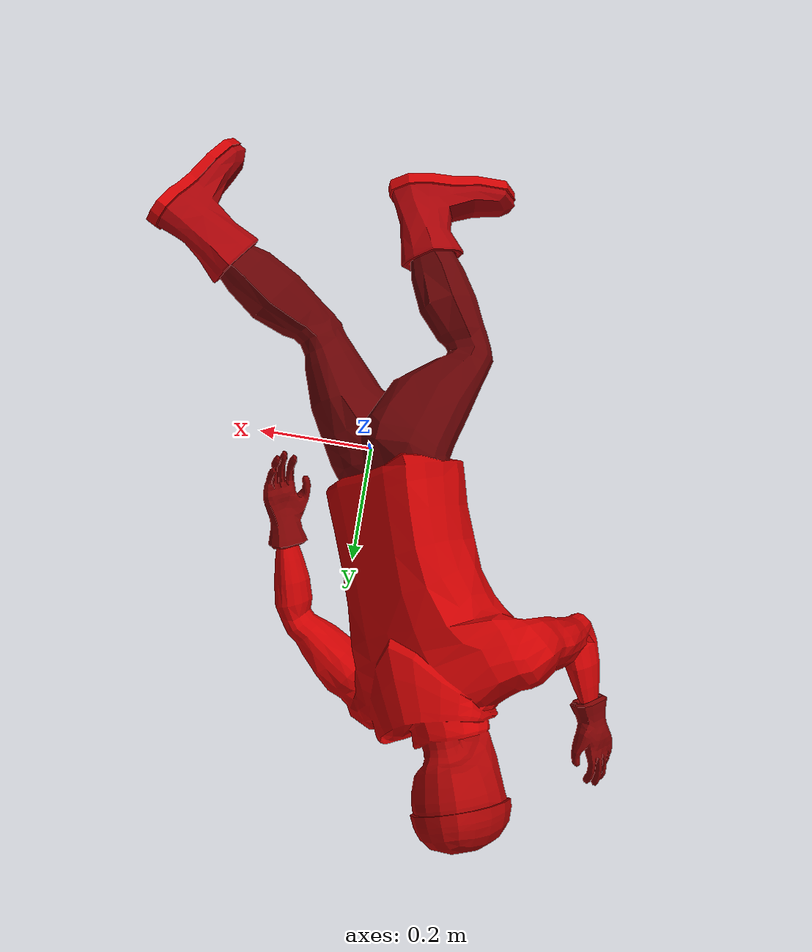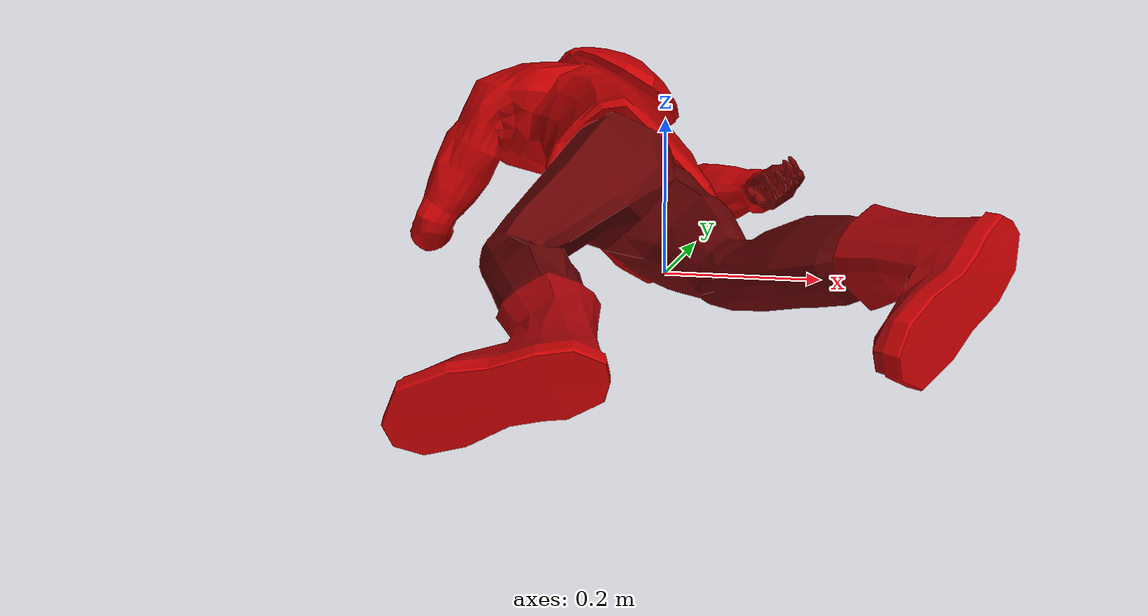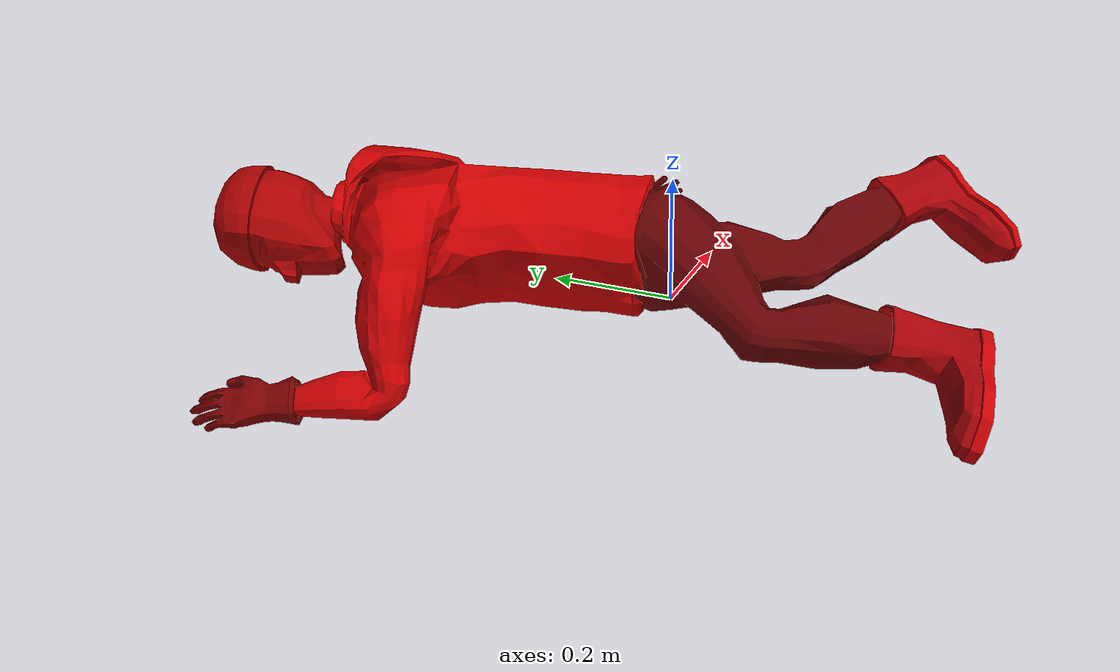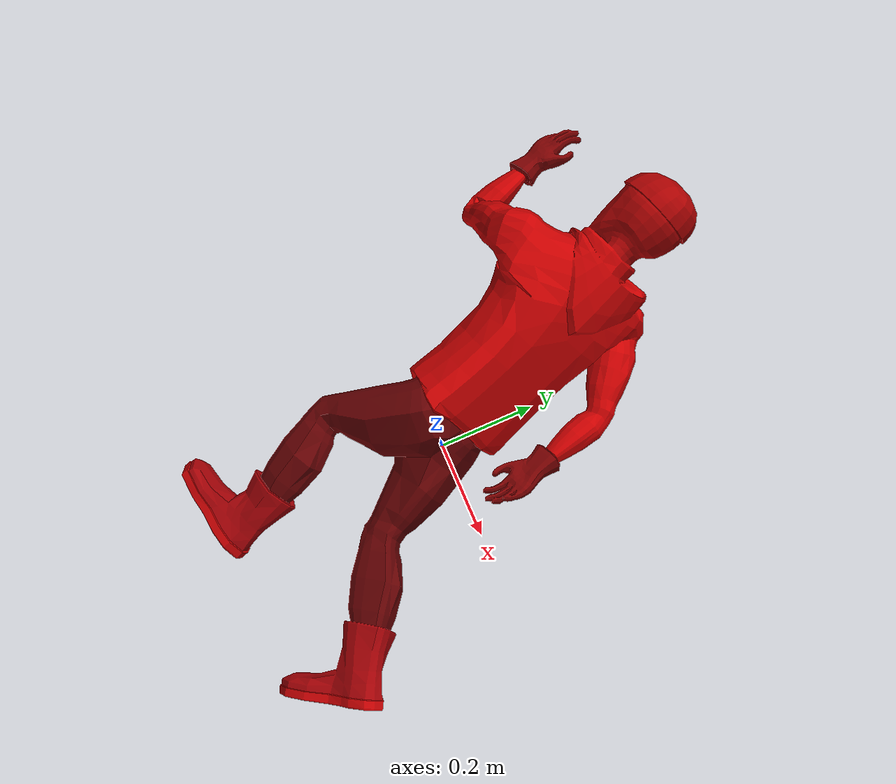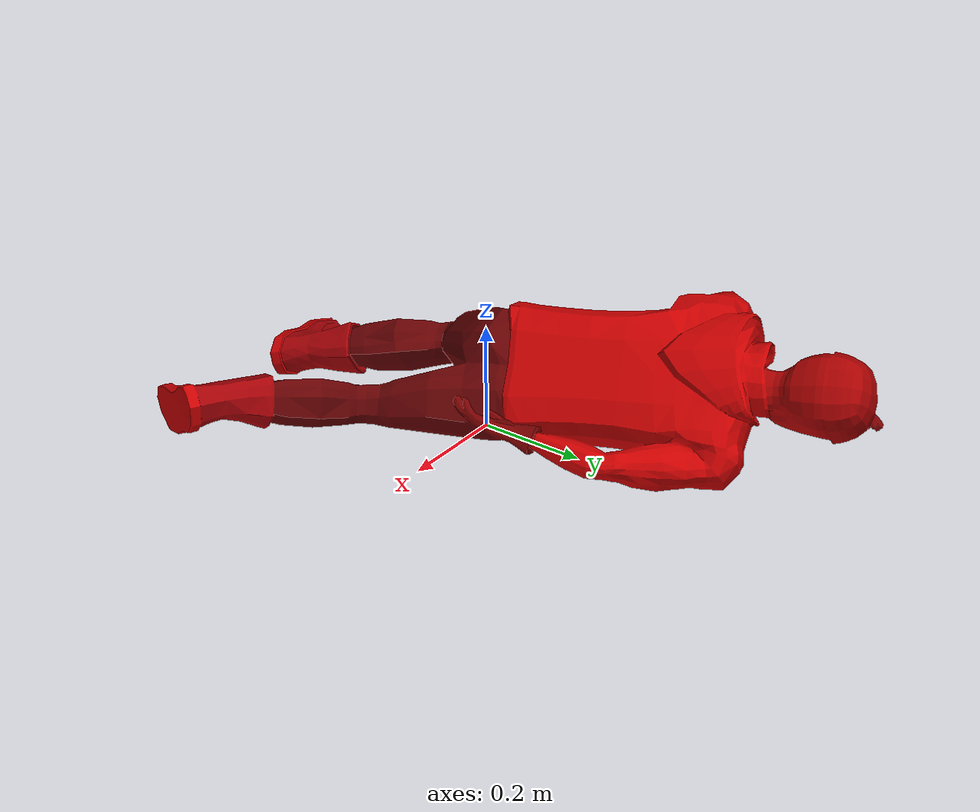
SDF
<?xml version="1.0"?>
<sdf version="1.5">
  <model name="victim_house_model">
    <static>
      true
    </static>
    <link name="victim_house_link">
      <inertial>
        <mass>0.390</mass>
        <inertia>
          <ixx>0.00058</ixx>
          <ixy>0</ixy>
          <ixz>0</ixz>
          <iyy>0.00058</iyy>
          <iyz>0</iyz>
          <izz>0.00019</izz>
        </inertia>
      </inertial>
      <collision name="victim_house_collision">
        <geometry>
          <mesh>
            <uri>model://victim_house/meshes/victim02.dae</uri>
          </mesh>
        </geometry>
        <surface>
          <friction>
            <ode>
              <mu>1.0</mu>
              <mu2>1.0</mu2>
            </ode>
          </friction>
          <contact>
            <ode>
              <kp>10000000.0</kp>
              <kd>1.0</kd>
              <min_depth>0.001</min_depth>
              <max_vel>0.1</max_vel>
            </ode>
          </contact>
        </surface>
      </collision>
      <visual name="victim_house_visual">
        <geometry>
          <mesh>
            <uri>model://victim_house/meshes/victim02.dae</uri>
          </mesh>
        </geometry>
      </visual>
    </link>
  </model>
</sdf>
